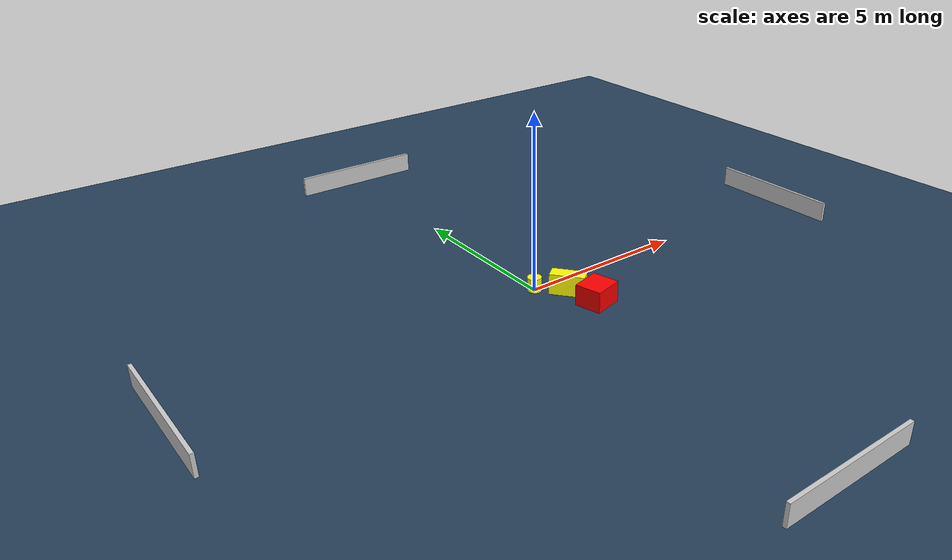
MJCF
<?xml version="1.0" ?>
<mujoco model="generated_environment">
  <option timestep="0.01" integrator="RK4" cone="elliptic"/>
  <default>
    <geom density="1"/>
  </default>
  <asset>
    <texture builtin="gradient" height="3072" name="skybox" rgb1="0.3 0.5 0.7" rgb2="0 0 0" type="skybox" width="512"/>
    <texture builtin="checker" height="300" name="groundplane" rgb1="0.2 0.3 0.4" rgb2="0.1 0.2 0.3" type="2d" width="300"/>
    <material name="groundplane" reflectance="0.2" texrepeat="5 5" texture="groundplane"/>
  </asset>
  <worldbody>
    <light dir="0 0 -1" directional="true" pos="0 0 1.5"/>
    <geom condim="3" friction="0.5 0.005 0.001" material="groundplane" name="floor" pos="0 0 0" size="0 0 0.05" type="plane"/>
    <body name="walls">
      <geom name="wall_1" condim="4" pos="-10.0 0.0 0.3" rgba="0.800000011920929 0.800000011920929 0.800000011920929 1.0" size="0.05 2.0 0.3" type="box"/>
      <geom name="wall_2" condim="4" pos="10.0 0.0 0.3" rgba="0.800000011920929 0.800000011920929 0.800000011920929 1.0" size="0.05 2.0 0.3" type="box"/>
      <geom name="wall_3" condim="4" pos="0.0 -10.0 0.3" rgba="0.800000011920929 0.800000011920929 0.800000011920929 1.0" size="2.0 0.05 0.3" type="box"/>
      <geom name="wall_4" condim="4" pos="0.0 10.0 0.3" rgba="0.800000011920929 0.800000011920929 0.800000011920929 1.0" size="2.0 0.05 0.3" type="box"/>
    </body>
    <body name="robot">
      <joint name="joint_x" type="slide" pos="0 0 0" axis="1 0 0"/>
      <joint name="joint_y" type="slide" pos="0 0 0" axis="0 1 0"/>
      <geom name="robot" type="cylinder" pos="0.0 0.0 0.2" size="0.2 0.2 0.0" mass="5.0" friction="1.0 0.005 0.0001" condim="4" rgba="1.0 1.0 0.0 1.0"/>
    </body>
    <body name="obstacle_1_movable">
      <geom name="obstacle_1_movable" condim="4" pos="0.6218326930677306 -0.6806890860416719 0.3" euler="0 0 37.897081274453676" friction="0.0 0.005 0.001" rgba="1.0 1.0 0.0 1.0" size="0.20098962891902603 0.4903985891038674 0.3" type="box" mass="0.1"/>
      <joint type="free"/>
    </body>
    <body name="obstacle_2_static">
      <geom name="obstacle_2_static" condim="4" pos="0.8524768632339746 -1.5769461385889816 0.3" euler="0 0 193.9932669802559" friction="0.0 0.005 0.001" rgba="1.0 0.0 0.0 1.0" size="0.42735274914137905 0.3837671191702441 0.3" type="box"/>
    </body>
  </worldbody>
  <actuator>
    <motor name="actuator_x" joint="joint_x" gear="1" ctrlrange="-1 1"/>
    <motor name="actuator_y" joint="joint_y" gear="1" ctrlrange="-1 1"/>
  </actuator>
</mujoco>
